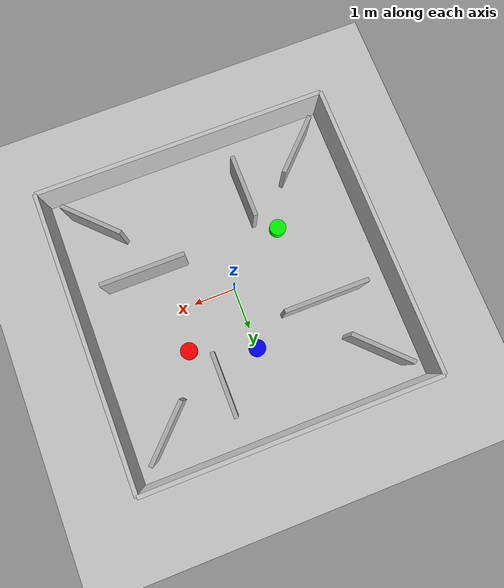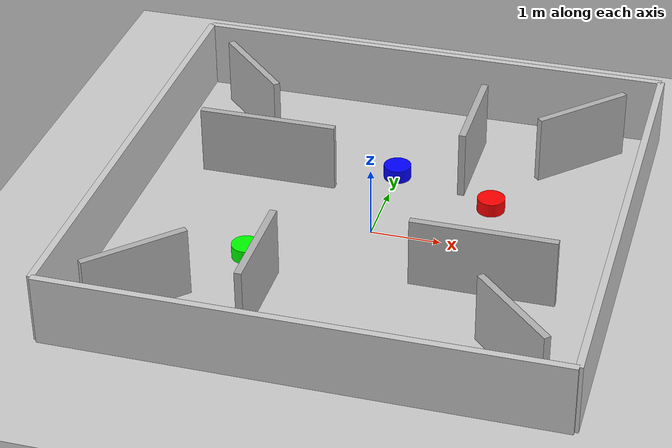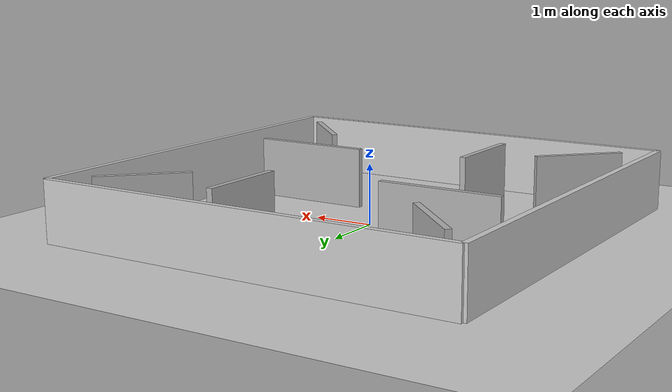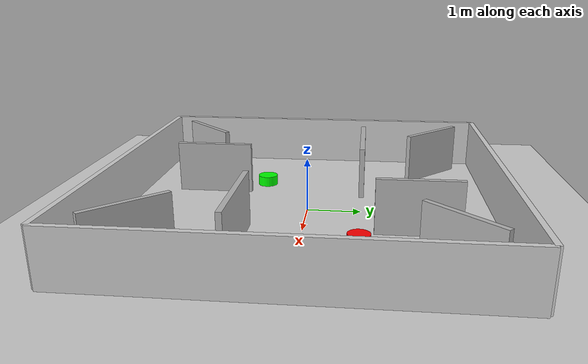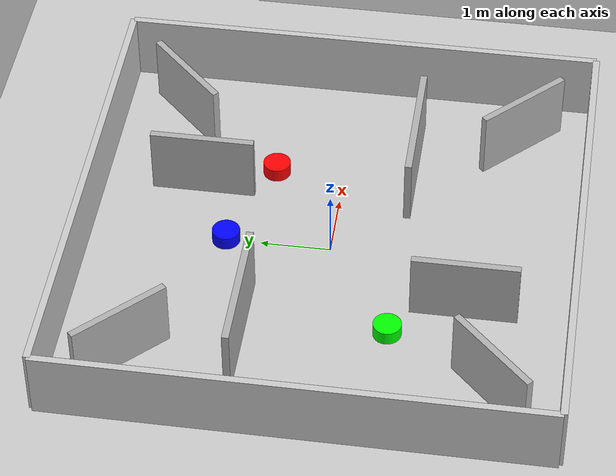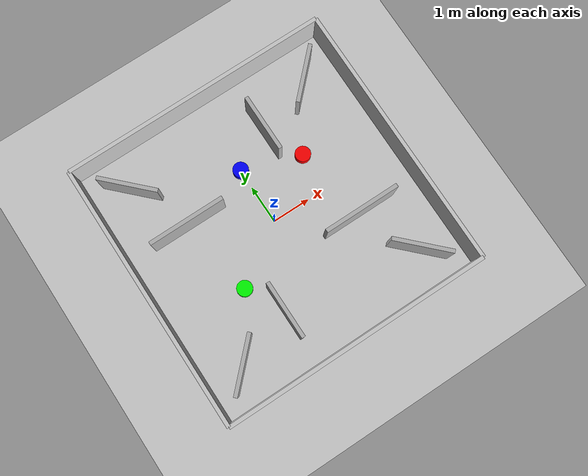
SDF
<?xml version="1.0" ?>
<sdf version="1.6">
  <world name="stage3_enhanced">
    <!-- Physics settings - unchanged -->
    <physics type="ode">
      <max_step_size>0.001</max_step_size>
      <real_time_update_rate>1000</real_time_update_rate>
      <real_time_factor>1</real_time_factor>
    </physics>

    <!-- Basic Elements -->
    <include>
      <uri>model://ground_plane</uri>
    </include>
    <include>
      <uri>model://sun</uri>
    </include>

    <!-- Outer Walls - unchanged -->
    <model name="outer_wall1">
      <static>true</static>
      <pose>0 3.5 0.5 0 0 0</pose>
      <link name="link">
        <collision name="collision">
          <geometry><box><size>7 0.1 1</size></box></geometry>
        </collision>
        <visual name="visual">
          <geometry><box><size>7 0.1 1</size></box></geometry>
          <material><ambient>0.8 0.8 0.8 1</ambient></material>
        </visual>
      </link>
    </model>

    <model name="outer_wall2">
      <static>true</static>
      <pose>0 -3.5 0.5 0 0 0</pose>
      <link name="link">
        <collision name="collision">
          <geometry><box><size>7 0.1 1</size></box></geometry>
        </collision>
        <visual name="visual">
          <geometry><box><size>7 0.1 1</size></box></geometry>
          <material><ambient>0.8 0.8 0.8 1</ambient></material>
        </visual>
      </link>
    </model>

    <model name="outer_wall3">
      <static>true</static>
      <pose>3.5 0 0.5 0 0 1.5708</pose>
      <link name="link">
        <collision name="collision">
          <geometry><box><size>7 0.1 1</size></box></geometry>
        </collision>
        <visual name="visual">
          <geometry><box><size>7 0.1 1</size></box></geometry>
          <material><ambient>0.8 0.8 0.8 1</ambient></material>
        </visual>
      </link>
    </model>

    <model name="outer_wall4">
      <static>true</static>
      <pose>-3.5 0 0.5 0 0 1.5708</pose>
      <link name="link">
        <collision name="collision">
          <geometry><box><size>7 0.1 1</size></box></geometry>
        </collision>
        <visual name="visual">
          <geometry><box><size>7 0.1 1</size></box></geometry>
          <material><ambient>0.8 0.8 0.8 1</ambient></material>
        </visual>
      </link>
    </model>

    <!-- Improved Static Obstacles -->
    <!-- Parallel Barriers -->
    <model name="static_wall1">
      <static>true</static>
      <pose>-1.8 1.0 0.5 0 0 0</pose>
      <link name="link">
        <collision name="collision">
          <geometry><box><size>2.0 0.1 1</size></box></geometry>
        </collision>
        <visual name="visual">
          <geometry><box><size>2.0 0.1 1</size></box></geometry>
          <material><ambient>0.7 0.7 0.7 1</ambient></material>
        </visual>
      </link>
    </model>

    <model name="static_wall2">
      <static>true</static>
      <pose>1.8 -1.0 0.5 0 0 0</pose>
      <link name="link">
        <collision name="collision">
          <geometry><box><size>2.0 0.1 1</size></box></geometry>
        </collision>
        <visual name="visual">
          <geometry><box><size>2.0 0.1 1</size></box></geometry>
          <material><ambient>0.7 0.7 0.7 1</ambient></material>
        </visual>
      </link>
    </model>

    <!-- Vertical Barriers -->
    <model name="static_wall3">
      <static>true</static>
      <pose>-1.0 -2.0 0.5 0 0 1.5708</pose>
      <link name="link">
        <collision name="collision">
          <geometry><box><size>1.5 0.1 1</size></box></geometry>
        </collision>
        <visual name="visual">
          <geometry><box><size>1.5 0.1 1</size></box></geometry>
          <material><ambient>0.7 0.7 0.7 1</ambient></material>
        </visual>
      </link>
    </model>

    <model name="static_wall4">
      <static>true</static>
      <pose>1.0 2.0 0.5 0 0 1.5708</pose>
      <link name="link">
        <collision name="collision">
          <geometry><box><size>1.5 0.1 1</size></box></geometry>
        </collision>
        <visual name="visual">
          <geometry><box><size>1.5 0.1 1</size></box></geometry>
          <material><ambient>0.7 0.7 0.7 1</ambient></material>
        </visual>
      </link>
    </model>

    <!-- Corner Barriers - Now symmetric -->
    <model name="corner_barrier1">
      <static>true</static>
      <pose>2.5 2.5 0.5 0 0 0.785</pose>
      <link name="link">
        <collision name="collision">
          <geometry><box><size>1.5 0.1 1</size></box></geometry>
        </collision>
        <visual name="visual">
          <geometry><box><size>1.5 0.1 1</size></box></geometry>
          <material><ambient>0.7 0.7 0.7 1</ambient></material>
        </visual>
      </link>
    </model>

    <model name="corner_barrier2">
      <static>true</static>
      <pose>-2.5 2.5 0.5 0 0 -0.785</pose>
      <link name="link">
        <collision name="collision">
          <geometry><box><size>1.5 0.1 1</size></box></geometry>
        </collision>
        <visual name="visual">
          <geometry><box><size>1.5 0.1 1</size></box></geometry>
          <material><ambient>0.7 0.7 0.7 1</ambient></material>
        </visual>
      </link>
    </model>

    <model name="corner_barrier3">
      <static>true</static>
      <pose>-2.5 -2.5 0.5 0 0 0.785</pose>
      <link name="link">
        <collision name="collision">
          <geometry><box><size>1.5 0.1 1</size></box></geometry>
        </collision>
        <visual name="visual">
          <geometry><box><size>1.5 0.1 1</size></box></geometry>
          <material><ambient>0.7 0.7 0.7 1</ambient></material>
        </visual>
      </link>
    </model>

    <model name="corner_barrier4">
      <static>true</static>
      <pose>2.5 -2.5 0.5 0 0 -0.785</pose>
      <link name="link">
        <collision name="collision">
          <geometry><box><size>1.5 0.1 1</size></box></geometry>
        </collision>
        <visual name="visual">
          <geometry><box><size>1.5 0.1 1</size></box></geometry>
          <material><ambient>0.7 0.7 0.7 1</ambient></material>
        </visual>
      </link>
    </model>
    <!-- Dynamic Obstacles - Fixed height and inertia -->
    <!-- Dynamic Obstacles -->
<model name="dynamic_obstacle1">
  <pose>1.5 1.0 0.1 0 0 0</pose>
  <link name="link">
    <collision name="collision">
      <geometry>
        <cylinder>
          <radius>0.2</radius>
          <length>0.2</length>
        </cylinder>
      </geometry>
      <surface>
        <friction>
          <ode>
            <mu>1.0</mu>
            <mu2>1.0</mu2>
          </ode>
        </friction>
      </surface>
    </collision>
    <visual name="visual">
      <geometry>
        <cylinder>
          <radius>0.2</radius>
          <length>0.2</length>
        </cylinder>
      </geometry>
      <material>
        <ambient>1 0 0 1</ambient>
        <diffuse>1 0 0 1</diffuse>
      </material>
    </visual>
    <inertial>
      <mass>1.0</mass>
      <inertia>
        <ixx>0.02</ixx>
        <iyy>0.02</iyy>
        <izz>0.02</izz>
      </inertia>
    </inertial>
  </link>
  <plugin name="dynamic_motion1" filename="libgazebo_ros_planar_move.so">
    <robotNamespace>/dynamic_obstacle1</robotNamespace>
    <commandTopic>cmd_vel</commandTopic>
    <odometryTopic>odom</odometryTopic>
    <odometryRate>20</odometryRate>
  </plugin>
</model>

<model name="dynamic_obstacle2">
  <pose>-1.5 -1.0 0.1 0 0 0</pose>
  <link name="link">
    <collision name="collision">
      <geometry>
        <cylinder>
          <radius>0.2</radius>
          <length>0.2</length>
        </cylinder>
      </geometry>
      <surface>
        <friction>
          <ode>
            <mu>1.0</mu>
            <mu2>1.0</mu2>
          </ode>
        </friction>
      </surface>
    </collision>
    <visual name="visual">
      <geometry>
        <cylinder>
          <radius>0.2</radius>
          <length>0.2</length>
        </cylinder>
      </geometry>
      <material>
        <ambient>0 1 0 1</ambient>
        <diffuse>0 1 0 1</diffuse>
      </material>
    </visual>
    <inertial>
      <mass>1.0</mass>
      <inertia>
        <ixx>0.02</ixx>
        <iyy>0.02</iyy>
        <izz>0.02</izz>
      </inertia>
    </inertial>
  </link>
  <plugin name="dynamic_motion2" filename="libgazebo_ros_planar_move.so">
    <robotNamespace>/dynamic_obstacle2</robotNamespace>
    <commandTopic>cmd_vel</commandTopic>
    <odometryTopic>odom</odometryTopic>
    <odometryRate>20</odometryRate>
  </plugin>
</model>

<model name="dynamic_obstacle3">
  <pose>0 1.5 0.1 0 0 0</pose>
  <link name="link">
    <collision name="collision">
      <geometry>
        <cylinder>
          <radius>0.2</radius>
          <length>0.2</length>
        </cylinder>
      </geometry>
      <surface>
        <friction>
          <ode>
            <mu>1.0</mu>
            <mu2>1.0</mu2>
          </ode>
        </friction>
      </surface>
    </collision>
    <visual name="visual">
      <geometry>
        <cylinder>
          <radius>0.2</radius>
          <length>0.2</length>
        </cylinder>
      </geometry>
      <material>
        <ambient>0 0 1 1</ambient>
        <diffuse>0 0 1 1</diffuse>
      </material>
    </visual>
    <inertial>
      <mass>1.0</mass>
      <inertia>
        <ixx>0.02</ixx>
        <iyy>0.02</iyy>
        <izz>0.02</izz>
      </inertia>
    </inertial>
  </link>
  <plugin name="dynamic_motion3" filename="libgazebo_ros_planar_move.so">
    <robotNamespace>/dynamic_obstacle3</robotNamespace>
    <commandTopic>cmd_vel</commandTopic>
    <odometryTopic>odom</odometryTopic>
    <odometryRate>20</odometryRate>
  </plugin>
</model>

  </world>
</sdf>
